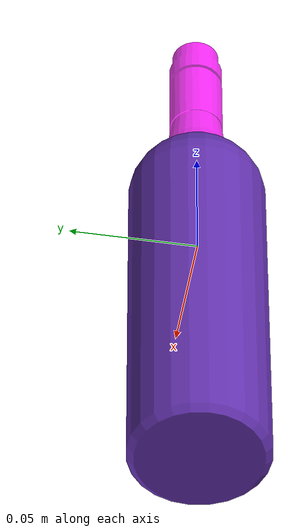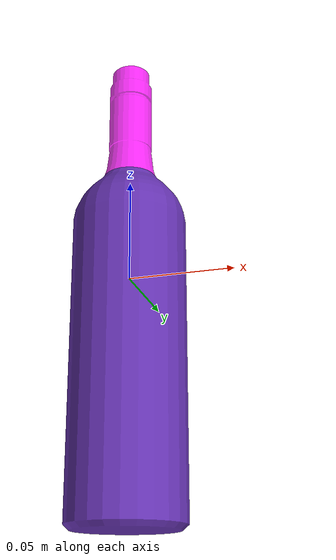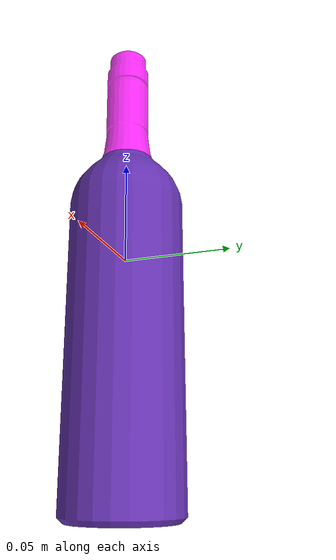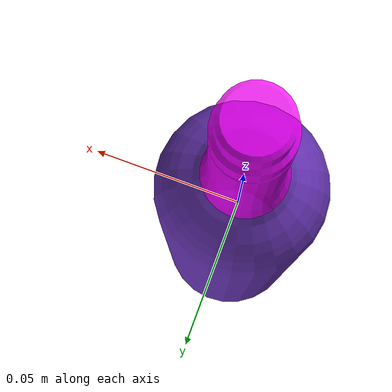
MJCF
<?xml version="1.0" encoding="utf-8"?>
<mujoco model="top_watertight_tiny">

  <asset>

    <mesh file="top_watertight_tiny.obj"/>

    <mesh file="top_watertight_tiny_collision_0.obj"/>

    <mesh file="top_watertight_tiny_collision_1.obj"/>

    <mesh file="top_watertight_tiny_collision_2.obj"/>

    <mesh file="top_watertight_tiny_collision_3.obj"/>

    <mesh file="top_watertight_tiny_collision_4.obj"/>

    <mesh file="top_watertight_tiny_collision_5.obj"/>

    <mesh file="top_watertight_tiny_collision_6.obj"/>

    <mesh file="top_watertight_tiny_collision_7.obj"/>

    <mesh file="top_watertight_tiny_collision_8.obj"/>

    <mesh file="top_watertight_tiny_collision_9.obj"/>

    <mesh file="top_watertight_tiny_collision_10.obj"/>

    <mesh file="top_watertight_tiny_collision_11.obj"/>

    <mesh file="top_watertight_tiny_collision_12.obj"/>

    <mesh file="top_watertight_tiny_collision_13.obj"/>

    <mesh file="top_watertight_tiny_collision_14.obj"/>

    <mesh file="top_watertight_tiny_collision_15.obj"/>

    <mesh file="top_watertight_tiny_collision_16.obj"/>

    <mesh file="top_watertight_tiny_collision_17.obj"/>

    <mesh file="top_watertight_tiny_collision_18.obj"/>

    <mesh file="top_watertight_tiny_collision_19.obj"/>

    <mesh file="top_watertight_tiny_collision_20.obj"/>

    <mesh file="top_watertight_tiny_collision_21.obj"/>

    <mesh file="top_watertight_tiny_collision_22.obj"/>

    <mesh file="top_watertight_tiny_collision_23.obj"/>

    <mesh file="top_watertight_tiny_collision_24.obj"/>

    <mesh file="top_watertight_tiny_collision_25.obj"/>

    <mesh file="top_watertight_tiny_collision_26.obj"/>

    <mesh file="top_watertight_tiny_collision_27.obj"/>

    <mesh file="top_watertight_tiny_collision_28.obj"/>

    <mesh file="top_watertight_tiny_collision_29.obj"/>

    <mesh file="top_watertight_tiny_collision_30.obj"/>

    <mesh file="top_watertight_tiny_collision_31.obj"/>

    <mesh file="top_watertight_tiny_collision_32.obj"/>

    <mesh file="top_watertight_tiny_collision_33.obj"/>

    <mesh file="bottom_watertight_tiny.obj"/>

    <mesh file="bottom_watertight_tiny_collision_0.obj"/>

    <mesh file="bottom_watertight_tiny_collision_1.obj"/>

    <mesh file="bottom_watertight_tiny_collision_2.obj"/>

    <mesh file="bottom_watertight_tiny_collision_3.obj"/>

    <mesh file="bottom_watertight_tiny_collision_4.obj"/>

    <mesh file="bottom_watertight_tiny_collision_5.obj"/>

    <mesh file="bottom_watertight_tiny_collision_6.obj"/>

    <mesh file="bottom_watertight_tiny_collision_7.obj"/>

    <mesh file="bottom_watertight_tiny_collision_8.obj"/>

    <mesh file="bottom_watertight_tiny_collision_9.obj"/>

    <mesh file="bottom_watertight_tiny_collision_10.obj"/>

    <mesh file="bottom_watertight_tiny_collision_11.obj"/>

    <mesh file="bottom_watertight_tiny_collision_12.obj"/>

    <mesh file="bottom_watertight_tiny_collision_13.obj"/>

    <mesh file="bottom_watertight_tiny_collision_14.obj"/>

    <mesh file="bottom_watertight_tiny_collision_15.obj"/>

    <mesh file="bottom_watertight_tiny_collision_16.obj"/>

    <mesh file="bottom_watertight_tiny_collision_17.obj"/>

    <mesh file="bottom_watertight_tiny_collision_18.obj"/>

    <mesh file="bottom_watertight_tiny_collision_19.obj"/>

    <mesh file="bottom_watertight_tiny_collision_20.obj"/>

    <mesh file="bottom_watertight_tiny_collision_21.obj"/>

    <mesh file="bottom_watertight_tiny_collision_22.obj"/>

    <mesh file="bottom_watertight_tiny_collision_23.obj"/>

    <mesh file="bottom_watertight_tiny_collision_24.obj"/>

    <mesh file="bottom_watertight_tiny_collision_25.obj"/>

    <mesh file="bottom_watertight_tiny_collision_26.obj"/>

    <mesh file="bottom_watertight_tiny_collision_27.obj"/>

    <mesh file="bottom_watertight_tiny_collision_28.obj"/>

    <mesh file="bottom_watertight_tiny_collision_29.obj"/>

    <mesh file="bottom_watertight_tiny_collision_30.obj"/>

    <mesh file="bottom_watertight_tiny_collision_31.obj"/>

    <mesh file="bottom_watertight_tiny_collision_32.obj"/>

    <mesh file="bottom_watertight_tiny_collision_33.obj"/>

    <mesh file="bottom_watertight_tiny_collision_34.obj"/>

    <mesh file="bottom_watertight_tiny_collision_35.obj"/>

    <mesh file="bottom_watertight_tiny_collision_36.obj"/>

    <mesh file="bottom_watertight_tiny_collision_37.obj"/>

    <mesh file="bottom_watertight_tiny_collision_38.obj"/>

    <mesh file="bottom_watertight_tiny_collision_39.obj"/>

    <mesh file="bottom_watertight_tiny_collision_40.obj"/>

    <mesh file="bottom_watertight_tiny_collision_41.obj"/>

    <mesh file="bottom_watertight_tiny_collision_42.obj"/>

    <mesh file="bottom_watertight_tiny_collision_43.obj"/>

    <mesh file="bottom_watertight_tiny_collision_44.obj"/>

    <mesh file="bottom_watertight_tiny_collision_45.obj"/>

    <mesh file="bottom_watertight_tiny_collision_46.obj"/>

    <mesh file="bottom_watertight_tiny_collision_47.obj"/>

    <mesh file="bottom_watertight_tiny_collision_48.obj"/>

    <mesh file="bottom_watertight_tiny_collision_49.obj"/>

    <mesh file="bottom_watertight_tiny_collision_50.obj"/>

    <mesh file="bottom_watertight_tiny_collision_51.obj"/>

    <mesh file="bottom_watertight_tiny_collision_52.obj"/>

    <mesh file="bottom_watertight_tiny_collision_53.obj"/>

  </asset>

  <worldbody>

    <body name="top_watertight_tiny">

      <freejoint/>

      <geom mesh="top_watertight_tiny" group="2" type="mesh" rgba="0.4 0.2 0.7 1" contype="0" conaffinity="0" solimp="0.90 0.95 0.001" solref="0.02 1.0" density="100" friction="0.95 0.4 0.3"/>

      <geom mesh="top_watertight_tiny_collision_0" rgba="0.5838808770320267 0.16024286723195047 0.9274841360253705 1" group="3" type="mesh" solimp="0.90 0.95 0.001" solref="0.02 1.0" density="100" friction="0.95 0.4 0.3"/>

      <geom mesh="top_watertight_tiny_collision_1" rgba="0.2859655240306881 0.8735535389732758 0.46463092634675607 1" group="3" type="mesh" solimp="0.90 0.95 0.001" solref="0.02 1.0" density="100" friction="0.95 0.4 0.3"/>

      <geom mesh="top_watertight_tiny_collision_2" rgba="0.8557717012830165 0.424814297170355 0.022844755695275776 1" group="3" type="mesh" solimp="0.90 0.95 0.001" solref="0.02 1.0" density="100" friction="0.95 0.4 0.3"/>

      <geom mesh="top_watertight_tiny_collision_3" rgba="0.927643087580724 0.3913718604235785 0.8611790141652644 1" group="3" type="mesh" solimp="0.90 0.95 0.001" solref="0.02 1.0" density="100" friction="0.95 0.4 0.3"/>

      <geom mesh="top_watertight_tiny_collision_4" rgba="0.38281858228349874 0.8904693037091685 0.013745514335092301 1" group="3" type="mesh" solimp="0.90 0.95 0.001" solref="0.02 1.0" density="100" friction="0.95 0.4 0.3"/>

      <geom mesh="top_watertight_tiny_collision_5" rgba="0.5652983945985984 0.044779843581251644 0.32551051070726356 1" group="3" type="mesh" solimp="0.90 0.95 0.001" solref="0.02 1.0" density="100" friction="0.95 0.4 0.3"/>

      <geom mesh="top_watertight_tiny_collision_6" rgba="0.8822057925030022 0.6989202979402465 0.06247204981350174 1" group="3" type="mesh" solimp="0.90 0.95 0.001" solref="0.02 1.0" density="100" friction="0.95 0.4 0.3"/>

      <geom mesh="top_watertight_tiny_collision_7" rgba="0.47329044078501326 0.25452902644892506 0.3092036964012118 1" group="3" type="mesh" solimp="0.90 0.95 0.001" solref="0.02 1.0" density="100" friction="0.95 0.4 0.3"/>

      <geom mesh="top_watertight_tiny_collision_8" rgba="0.764433701615191 0.12029721737294263 0.5733534030900913 1" group="3" type="mesh" solimp="0.90 0.95 0.001" solref="0.02 1.0" density="100" friction="0.95 0.4 0.3"/>

      <geom mesh="top_watertight_tiny_collision_9" rgba="0.622439698264973 0.7552944395643298 0.1825275956274277 1" group="3" type="mesh" solimp="0.90 0.95 0.001" solref="0.02 1.0" density="100" friction="0.95 0.4 0.3"/>

      <geom mesh="top_watertight_tiny_collision_10" rgba="0.4519312766326846 0.4903700970442223 0.49112006383751716 1" group="3" type="mesh" solimp="0.90 0.95 0.001" solref="0.02 1.0" density="100" friction="0.95 0.4 0.3"/>

      <geom mesh="top_watertight_tiny_collision_11" rgba="0.8651051862686399 0.5684986870750321 0.08725653788236531 1" group="3" type="mesh" solimp="0.90 0.95 0.001" solref="0.02 1.0" density="100" friction="0.95 0.4 0.3"/>

      <geom mesh="top_watertight_tiny_collision_12" rgba="0.4596493856660716 0.22657335923281618 0.41475330553362466 1" group="3" type="mesh" solimp="0.90 0.95 0.001" solref="0.02 1.0" density="100" friction="0.95 0.4 0.3"/>

      <geom mesh="top_watertight_tiny_collision_13" rgba="0.2114126483432175 0.5490929606472804 0.5397889778486094 1" group="3" type="mesh" solimp="0.90 0.95 0.001" solref="0.02 1.0" density="100" friction="0.95 0.4 0.3"/>

      <geom mesh="top_watertight_tiny_collision_14" rgba="0.8673096606183635 0.059002437955801734 0.02688453104488786 1" group="3" type="mesh" solimp="0.90 0.95 0.001" solref="0.02 1.0" density="100" friction="0.95 0.4 0.3"/>

      <geom mesh="top_watertight_tiny_collision_15" rgba="0.3015172002483575 0.9849850228297916 0.7891960306993071 1" group="3" type="mesh" solimp="0.90 0.95 0.001" solref="0.02 1.0" density="100" friction="0.95 0.4 0.3"/>

      <geom mesh="top_watertight_tiny_collision_16" rgba="0.2508475766205479 0.2103850191655473 0.8352786893594053 1" group="3" type="mesh" solimp="0.90 0.95 0.001" solref="0.02 1.0" density="100" friction="0.95 0.4 0.3"/>

      <geom mesh="top_watertight_tiny_collision_17" rgba="0.40167991117084634 0.8349001825865444 0.9587799108100149 1" group="3" type="mesh" solimp="0.90 0.95 0.001" solref="0.02 1.0" density="100" friction="0.95 0.4 0.3"/>

      <geom mesh="top_watertight_tiny_collision_18" rgba="0.7352615893208766 0.12709950464172537 0.7903636152547142 1" group="3" type="mesh" solimp="0.90 0.95 0.001" solref="0.02 1.0" density="100" friction="0.95 0.4 0.3"/>

      <geom mesh="top_watertight_tiny_collision_19" rgba="0.8151158597898407 0.7113197265128012 0.8084434737964898 1" group="3" type="mesh" solimp="0.90 0.95 0.001" solref="0.02 1.0" density="100" friction="0.95 0.4 0.3"/>

      <geom mesh="top_watertight_tiny_collision_20" rgba="0.7421938185008691 0.5664571416290857 0.5807498885978792 1" group="3" type="mesh" solimp="0.90 0.95 0.001" solref="0.02 1.0" density="100" friction="0.95 0.4 0.3"/>

      <geom mesh="top_watertight_tiny_collision_21" rgba="0.8661745510110156 0.6598950683994533 0.8874225999417767 1" group="3" type="mesh" solimp="0.90 0.95 0.001" solref="0.02 1.0" density="100" friction="0.95 0.4 0.3"/>

      <geom mesh="top_watertight_tiny_collision_22" rgba="0.2062418206499813 0.6703920300263546 0.6794445054079213 1" group="3" type="mesh" solimp="0.90 0.95 0.001" solref="0.02 1.0" density="100" friction="0.95 0.4 0.3"/>

      <geom mesh="top_watertight_tiny_collision_23" rgba="0.5208765349898498 0.03012379090395234 0.20507781726040197 1" group="3" type="mesh" solimp="0.90 0.95 0.001" solref="0.02 1.0" density="100" friction="0.95 0.4 0.3"/>

      <geom mesh="top_watertight_tiny_collision_24" rgba="0.3660276092606942 0.8172657274901186 0.6410120909310704 1" group="3" type="mesh" solimp="0.90 0.95 0.001" solref="0.02 1.0" density="100" friction="0.95 0.4 0.3"/>

      <geom mesh="top_watertight_tiny_collision_25" rgba="0.9654128110545822 0.6418203609907077 0.31313706448264933 1" group="3" type="mesh" solimp="0.90 0.95 0.001" solref="0.02 1.0" density="100" friction="0.95 0.4 0.3"/>

      <geom mesh="top_watertight_tiny_collision_26" rgba="0.253681089601018 0.8289973271943135 0.7754223703801991 1" group="3" type="mesh" solimp="0.90 0.95 0.001" solref="0.02 1.0" density="100" friction="0.95 0.4 0.3"/>

      <geom mesh="top_watertight_tiny_collision_27" rgba="0.5495951548260221 0.25253360178597106 0.7047801638100372 1" group="3" type="mesh" solimp="0.90 0.95 0.001" solref="0.02 1.0" density="100" friction="0.95 0.4 0.3"/>

      <geom mesh="top_watertight_tiny_collision_28" rgba="0.379709031637094 0.9700035468434208 0.7462082825415741 1" group="3" type="mesh" solimp="0.90 0.95 0.001" solref="0.02 1.0" density="100" friction="0.95 0.4 0.3"/>

      <geom mesh="top_watertight_tiny_collision_29" rgba="0.9555934881465175 0.7647212106344229 0.9437564726747992 1" group="3" type="mesh" solimp="0.90 0.95 0.001" solref="0.02 1.0" density="100" friction="0.95 0.4 0.3"/>

      <geom mesh="top_watertight_tiny_collision_30" rgba="0.10096434833003509 0.8927386228646473 0.7302567767222437 1" group="3" type="mesh" solimp="0.90 0.95 0.001" solref="0.02 1.0" density="100" friction="0.95 0.4 0.3"/>

      <geom mesh="top_watertight_tiny_collision_31" rgba="0.1834430545494239 0.38224472007959676 0.8011025314324118 1" group="3" type="mesh" solimp="0.90 0.95 0.001" solref="0.02 1.0" density="100" friction="0.95 0.4 0.3"/>

      <geom mesh="top_watertight_tiny_collision_32" rgba="0.11648325262676129 0.3566069192006701 0.6614943386681945 1" group="3" type="mesh" solimp="0.90 0.95 0.001" solref="0.02 1.0" density="100" friction="0.95 0.4 0.3"/>

      <geom mesh="top_watertight_tiny_collision_33" rgba="0.23756290688537152 0.2583209331284073 0.23871590363692397 1" group="3" type="mesh" solimp="0.90 0.95 0.001" solref="0.02 1.0" density="100" friction="0.95 0.4 0.3"/>

      <body name="bottom_watertight_tiny">

        <geom mesh="bottom_watertight_tiny" group="2" type="mesh" rgba="1 0 1 0.8" contype="0" conaffinity="0" solimp="0.90 0.95 0.001" solref="0.02 1.0" density="100" friction="0.95 0.4 0.3"/>

        <geom mesh="bottom_watertight_tiny_collision_0" rgba="0.12470216132765499 0.788555654370912 0.3075269739890024 1" group="3" type="mesh" solimp="0.90 0.95 0.001" solref="0.02 1.0" density="100" friction="0.95 0.4 0.3"/>

        <geom mesh="bottom_watertight_tiny_collision_1" rgba="0.6711293026936834 0.75896064071528 0.02782121680353411 1" group="3" type="mesh" solimp="0.90 0.95 0.001" solref="0.02 1.0" density="100" friction="0.95 0.4 0.3"/>

        <geom mesh="bottom_watertight_tiny_collision_2" rgba="0.6546042916885025 0.4369701719363117 0.14714436414242438 1" group="3" type="mesh" solimp="0.90 0.95 0.001" solref="0.02 1.0" density="100" friction="0.95 0.4 0.3"/>

        <geom mesh="bottom_watertight_tiny_collision_3" rgba="0.5127584918432047 0.54043948627252 0.20084696290939397 1" group="3" type="mesh" solimp="0.90 0.95 0.001" solref="0.02 1.0" density="100" friction="0.95 0.4 0.3"/>

        <geom mesh="bottom_watertight_tiny_collision_4" rgba="0.6264983097299685 0.09828708071870595 0.3041060840301615 1" group="3" type="mesh" solimp="0.90 0.95 0.001" solref="0.02 1.0" density="100" friction="0.95 0.4 0.3"/>

        <geom mesh="bottom_watertight_tiny_collision_5" rgba="0.856443148861024 0.1418063934995616 0.13580500171659982 1" group="3" type="mesh" solimp="0.90 0.95 0.001" solref="0.02 1.0" density="100" friction="0.95 0.4 0.3"/>

        <geom mesh="bottom_watertight_tiny_collision_6" rgba="0.6764838107471808 0.964396499832098 0.8258184150474928 1" group="3" type="mesh" solimp="0.90 0.95 0.001" solref="0.02 1.0" density="100" friction="0.95 0.4 0.3"/>

        <geom mesh="bottom_watertight_tiny_collision_7" rgba="0.7113568973194032 0.6557566510867947 0.06740293883608162 1" group="3" type="mesh" solimp="0.90 0.95 0.001" solref="0.02 1.0" density="100" friction="0.95 0.4 0.3"/>

        <geom mesh="bottom_watertight_tiny_collision_8" rgba="0.53256186395011 0.6186597267940159 0.6418871900527298 1" group="3" type="mesh" solimp="0.90 0.95 0.001" solref="0.02 1.0" density="100" friction="0.95 0.4 0.3"/>

        <geom mesh="bottom_watertight_tiny_collision_9" rgba="0.4531115554810463 0.05228343547159553 0.8135691639074789 1" group="3" type="mesh" solimp="0.90 0.95 0.001" solref="0.02 1.0" density="100" friction="0.95 0.4 0.3"/>

        <geom mesh="bottom_watertight_tiny_collision_10" rgba="0.9440513106460834 0.4815023434407061 0.9742085302180635 1" group="3" type="mesh" solimp="0.90 0.95 0.001" solref="0.02 1.0" density="100" friction="0.95 0.4 0.3"/>

        <geom mesh="bottom_watertight_tiny_collision_11" rgba="0.37063885619093606 0.028895078520429607 0.5466262512358696 1" group="3" type="mesh" solimp="0.90 0.95 0.001" solref="0.02 1.0" density="100" friction="0.95 0.4 0.3"/>

        <geom mesh="bottom_watertight_tiny_collision_12" rgba="0.3353506632519452 0.6253023460383373 0.3913038983323851 1" group="3" type="mesh" solimp="0.90 0.95 0.001" solref="0.02 1.0" density="100" friction="0.95 0.4 0.3"/>

        <geom mesh="bottom_watertight_tiny_collision_13" rgba="0.4522255477967263 0.02342684546130258 0.8183528664521823 1" group="3" type="mesh" solimp="0.90 0.95 0.001" solref="0.02 1.0" density="100" friction="0.95 0.4 0.3"/>

        <geom mesh="bottom_watertight_tiny_collision_14" rgba="0.11203555258211906 0.8842721279049731 0.8586485753283908 1" group="3" type="mesh" solimp="0.90 0.95 0.001" solref="0.02 1.0" density="100" friction="0.95 0.4 0.3"/>

        <geom mesh="bottom_watertight_tiny_collision_15" rgba="0.06415419151858992 0.997280761307918 0.39480205006115265 1" group="3" type="mesh" solimp="0.90 0.95 0.001" solref="0.02 1.0" density="100" friction="0.95 0.4 0.3"/>

        <geom mesh="bottom_watertight_tiny_collision_16" rgba="0.08343031546975632 0.2106696294488115 0.962733579402605 1" group="3" type="mesh" solimp="0.90 0.95 0.001" solref="0.02 1.0" density="100" friction="0.95 0.4 0.3"/>

        <geom mesh="bottom_watertight_tiny_collision_17" rgba="0.9042445249245988 0.8912878027352642 0.8837472088376294 1" group="3" type="mesh" solimp="0.90 0.95 0.001" solref="0.02 1.0" density="100" friction="0.95 0.4 0.3"/>

        <geom mesh="bottom_watertight_tiny_collision_18" rgba="0.12500599334738227 0.5892374156880836 0.7283491833219028 1" group="3" type="mesh" solimp="0.90 0.95 0.001" solref="0.02 1.0" density="100" friction="0.95 0.4 0.3"/>

        <geom mesh="bottom_watertight_tiny_collision_19" rgba="0.3002497091838576 0.7152437604734228 0.6242386995301629 1" group="3" type="mesh" solimp="0.90 0.95 0.001" solref="0.02 1.0" density="100" friction="0.95 0.4 0.3"/>

        <geom mesh="bottom_watertight_tiny_collision_20" rgba="0.8988226822241002 0.5541728534280164 0.8738779376264127 1" group="3" type="mesh" solimp="0.90 0.95 0.001" solref="0.02 1.0" density="100" friction="0.95 0.4 0.3"/>

        <geom mesh="bottom_watertight_tiny_collision_21" rgba="0.6964586694106787 0.07278092716072393 0.5538863877702058 1" group="3" type="mesh" solimp="0.90 0.95 0.001" solref="0.02 1.0" density="100" friction="0.95 0.4 0.3"/>

        <geom mesh="bottom_watertight_tiny_collision_22" rgba="0.0885333459959674 0.7915218807268493 0.8064012368068467 1" group="3" type="mesh" solimp="0.90 0.95 0.001" solref="0.02 1.0" density="100" friction="0.95 0.4 0.3"/>

        <geom mesh="bottom_watertight_tiny_collision_23" rgba="0.3087755734659551 0.488943372371464 0.7211683812447898 1" group="3" type="mesh" solimp="0.90 0.95 0.001" solref="0.02 1.0" density="100" friction="0.95 0.4 0.3"/>

        <geom mesh="bottom_watertight_tiny_collision_24" rgba="0.17971477540273417 0.014200865762176718 0.9552357154959416 1" group="3" type="mesh" solimp="0.90 0.95 0.001" solref="0.02 1.0" density="100" friction="0.95 0.4 0.3"/>

        <geom mesh="bottom_watertight_tiny_collision_25" rgba="0.990971616962201 0.2746036337124833 0.3954810408679048 1" group="3" type="mesh" solimp="0.90 0.95 0.001" solref="0.02 1.0" density="100" friction="0.95 0.4 0.3"/>

        <geom mesh="bottom_watertight_tiny_collision_26" rgba="0.8160620872796662 0.5327916559964347 0.6015301725098761 1" group="3" type="mesh" solimp="0.90 0.95 0.001" solref="0.02 1.0" density="100" friction="0.95 0.4 0.3"/>

        <geom mesh="bottom_watertight_tiny_collision_27" rgba="0.8266158611597945 0.8402882489481804 0.623980103915394 1" group="3" type="mesh" solimp="0.90 0.95 0.001" solref="0.02 1.0" density="100" friction="0.95 0.4 0.3"/>

        <geom mesh="bottom_watertight_tiny_collision_28" rgba="0.18347671175916858 0.46620021207834195 0.6475075118835091 1" group="3" type="mesh" solimp="0.90 0.95 0.001" solref="0.02 1.0" density="100" friction="0.95 0.4 0.3"/>

        <geom mesh="bottom_watertight_tiny_collision_29" rgba="0.9409919372644951 0.28525010717079624 0.01819206873468071 1" group="3" type="mesh" solimp="0.90 0.95 0.001" solref="0.02 1.0" density="100" friction="0.95 0.4 0.3"/>

        <geom mesh="bottom_watertight_tiny_collision_30" rgba="0.5931399036669018 0.5836807325799213 0.15716754737286154 1" group="3" type="mesh" solimp="0.90 0.95 0.001" solref="0.02 1.0" density="100" friction="0.95 0.4 0.3"/>

        <geom mesh="bottom_watertight_tiny_collision_31" rgba="0.0190133949896355 0.708581122958618 0.6649805687980558 1" group="3" type="mesh" solimp="0.90 0.95 0.001" solref="0.02 1.0" density="100" friction="0.95 0.4 0.3"/>

        <geom mesh="bottom_watertight_tiny_collision_32" rgba="0.44084745810003256 0.9846733154739282 0.07372666701788444 1" group="3" type="mesh" solimp="0.90 0.95 0.001" solref="0.02 1.0" density="100" friction="0.95 0.4 0.3"/>

        <geom mesh="bottom_watertight_tiny_collision_33" rgba="0.3257296756027753 0.7262684975423467 0.7296469809036934 1" group="3" type="mesh" solimp="0.90 0.95 0.001" solref="0.02 1.0" density="100" friction="0.95 0.4 0.3"/>

        <geom mesh="bottom_watertight_tiny_collision_34" rgba="0.244119153663653 0.19022954797402314 0.7567710766778629 1" group="3" type="mesh" solimp="0.90 0.95 0.001" solref="0.02 1.0" density="100" friction="0.95 0.4 0.3"/>

        <geom mesh="bottom_watertight_tiny_collision_35" rgba="0.8995249847796548 0.31116282587507305 0.964860732401457 1" group="3" type="mesh" solimp="0.90 0.95 0.001" solref="0.02 1.0" density="100" friction="0.95 0.4 0.3"/>

        <geom mesh="bottom_watertight_tiny_collision_36" rgba="0.13942878069609832 0.7759329708298478 0.8979589683406929 1" group="3" type="mesh" solimp="0.90 0.95 0.001" solref="0.02 1.0" density="100" friction="0.95 0.4 0.3"/>

        <geom mesh="bottom_watertight_tiny_collision_37" rgba="0.22847710588294012 0.4937844788833241 0.6897284235684432 1" group="3" type="mesh" solimp="0.90 0.95 0.001" solref="0.02 1.0" density="100" friction="0.95 0.4 0.3"/>

        <geom mesh="bottom_watertight_tiny_collision_38" rgba="0.3052889955656659 0.5903297397199366 0.9703490954950963 1" group="3" type="mesh" solimp="0.90 0.95 0.001" solref="0.02 1.0" density="100" friction="0.95 0.4 0.3"/>

        <geom mesh="bottom_watertight_tiny_collision_39" rgba="0.9301468029103406 0.18063048106835755 0.8815794339854961 1" group="3" type="mesh" solimp="0.90 0.95 0.001" solref="0.02 1.0" density="100" friction="0.95 0.4 0.3"/>

        <geom mesh="bottom_watertight_tiny_collision_40" rgba="0.7606020193284553 0.686174643818717 0.48812409664524226 1" group="3" type="mesh" solimp="0.90 0.95 0.001" solref="0.02 1.0" density="100" friction="0.95 0.4 0.3"/>

        <geom mesh="bottom_watertight_tiny_collision_41" rgba="0.2960724666297896 0.7353320076665462 0.7677567746422215 1" group="3" type="mesh" solimp="0.90 0.95 0.001" solref="0.02 1.0" density="100" friction="0.95 0.4 0.3"/>

        <geom mesh="bottom_watertight_tiny_collision_42" rgba="0.9427872661526596 0.877936950631131 0.3260681249018015 1" group="3" type="mesh" solimp="0.90 0.95 0.001" solref="0.02 1.0" density="100" friction="0.95 0.4 0.3"/>

        <geom mesh="bottom_watertight_tiny_collision_43" rgba="0.84414678895829 0.5265084068154968 0.7091294299046815 1" group="3" type="mesh" solimp="0.90 0.95 0.001" solref="0.02 1.0" density="100" friction="0.95 0.4 0.3"/>

        <geom mesh="bottom_watertight_tiny_collision_44" rgba="0.5514944357306155 0.11045522100179328 0.06467118903608793 1" group="3" type="mesh" solimp="0.90 0.95 0.001" solref="0.02 1.0" density="100" friction="0.95 0.4 0.3"/>

        <geom mesh="bottom_watertight_tiny_collision_45" rgba="0.10445516847763603 0.7731972254208167 0.845233749196234 1" group="3" type="mesh" solimp="0.90 0.95 0.001" solref="0.02 1.0" density="100" friction="0.95 0.4 0.3"/>

        <geom mesh="bottom_watertight_tiny_collision_46" rgba="0.4524094351513155 0.7583920372844274 0.27964278071900306 1" group="3" type="mesh" solimp="0.90 0.95 0.001" solref="0.02 1.0" density="100" friction="0.95 0.4 0.3"/>

        <geom mesh="bottom_watertight_tiny_collision_47" rgba="0.376280788120837 0.4782681770770637 0.1716825571559838 1" group="3" type="mesh" solimp="0.90 0.95 0.001" solref="0.02 1.0" density="100" friction="0.95 0.4 0.3"/>

        <geom mesh="bottom_watertight_tiny_collision_48" rgba="0.4527580699615612 0.6633010724629292 0.7421298797587321 1" group="3" type="mesh" solimp="0.90 0.95 0.001" solref="0.02 1.0" density="100" friction="0.95 0.4 0.3"/>

        <geom mesh="bottom_watertight_tiny_collision_49" rgba="0.6623787351551653 0.4390916666441089 0.04598110006521006 1" group="3" type="mesh" solimp="0.90 0.95 0.001" solref="0.02 1.0" density="100" friction="0.95 0.4 0.3"/>

        <geom mesh="bottom_watertight_tiny_collision_50" rgba="0.027065253233853004 0.05589378174637827 0.834266728430844 1" group="3" type="mesh" solimp="0.90 0.95 0.001" solref="0.02 1.0" density="100" friction="0.95 0.4 0.3"/>

        <geom mesh="bottom_watertight_tiny_collision_51" rgba="0.4920384563791045 0.8183224481989386 0.542100871880276 1" group="3" type="mesh" solimp="0.90 0.95 0.001" solref="0.02 1.0" density="100" friction="0.95 0.4 0.3"/>

        <geom mesh="bottom_watertight_tiny_collision_52" rgba="0.3030506972935363 0.42268188890028413 0.6894389169978405 1" group="3" type="mesh" solimp="0.90 0.95 0.001" solref="0.02 1.0" density="100" friction="0.95 0.4 0.3"/>

        <geom mesh="bottom_watertight_tiny_collision_53" rgba="0.7399458745667906 0.11946374570835994 0.39963971640131957 1" group="3" type="mesh" solimp="0.90 0.95 0.001" solref="0.02 1.0" density="100" friction="0.95 0.4 0.3"/>

        <site name="bottom_watertight_tiny_touch_site" pos="0 0 0" size="0.2" rgba="1 0 0 0." type="sphere"/>
      </body>

      <site name="top_watertight_tiny_touch_site" pos="0 0 0" size="0.2" rgba="1 0 0 0." type="sphere"/>
    </body>

  </worldbody>

  <sensor>
    <touch name="top_watertight_tiny_touch" site="top_watertight_tiny_touch_site"/>
    <touch name="bottom_watertight_tiny_touch" site="bottom_watertight_tiny_touch_site"/>
  </sensor>
</mujoco>
